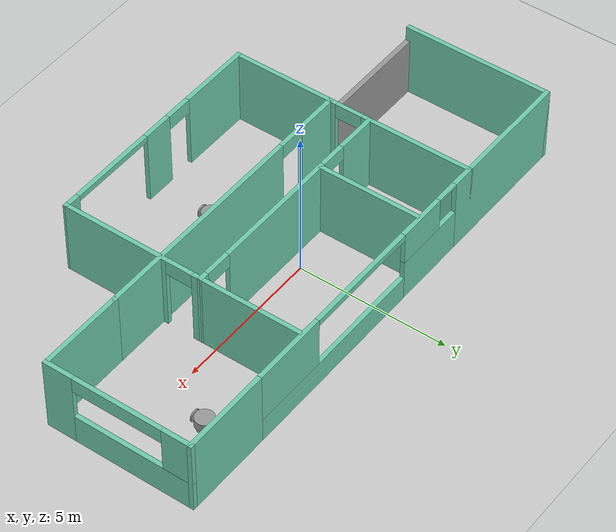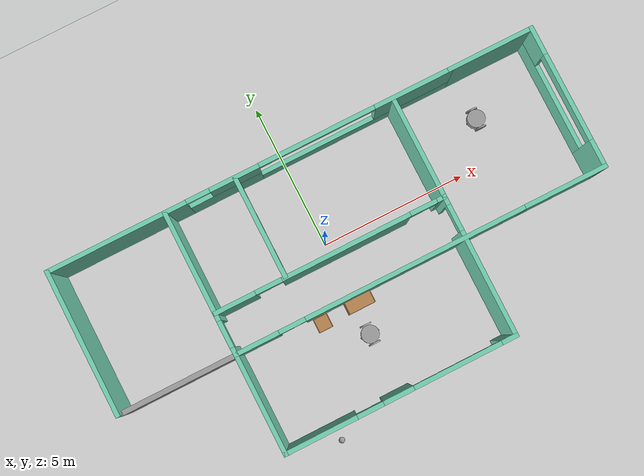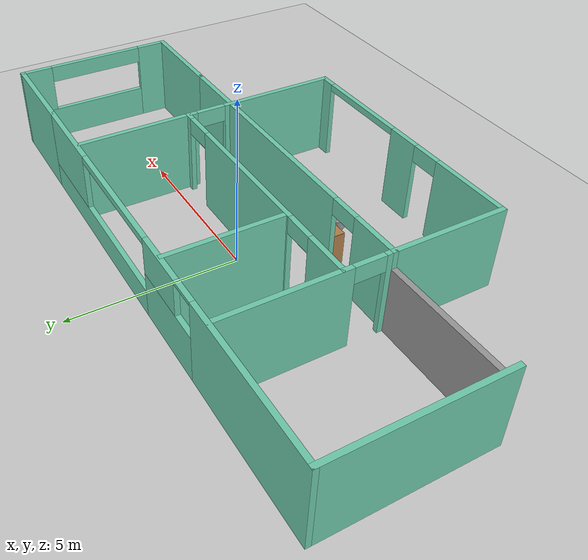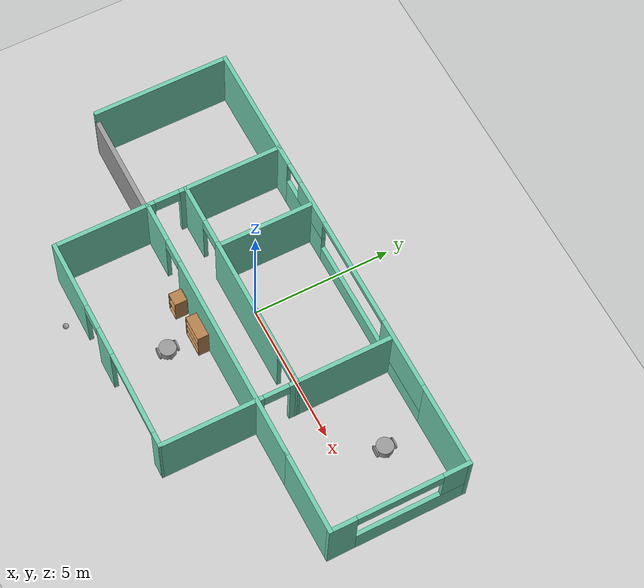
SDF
<sdf version="1.6">
 <world name="default">
  <plugin name="hello" filename="libhello.so"/>
  <light name="sun" type="directional">
   <pose>0 0 10 0 -0 0</pose>
   <diffuse>0.8 0.8 0.8 1</diffuse>
   <specular>0.2 0.2 0.2 1</specular>
   <attenuation>
    <range>1000</range>
    <constant>0.9</constant>
    <linear>0.01</linear>
    <quadratic>0.001</quadratic>
   </attenuation>
   <direction>-0.5 0.1 -0.9</direction>
  </light>
  <model name="ground_plane">
   <static>1</static>
   <link name="link">
    <collision name="collision">
     <geometry><plane><normal>0 0 1</normal><size>100 100</size></plane></geometry>
     <surface>
      <contact><collide_bitmask>65535</collide_bitmask></contact>
      <friction><ode><mu>100</mu><mu2>50</mu2></ode></friction>
     </surface>
    </collision>
    <visual name="visual">
     <cast_shadows>0</cast_shadows>
     <geometry><plane><normal>0 0 1</normal><size>100 100</size></plane></geometry>
     <material>
      <script><uri>file://media/materials/scripts/gazebo.material</uri><name>Gazebo/Grey</name></script>
     </material>
    </visual>
   </link>
  </model>
  <gravity>0 0 -9.8</gravity>
  <magnetic_field>6e-06 2.3e-05 -4.2e-05</magnetic_field>
  <atmosphere type="adiabatic"/>
  <physics name="default_physics" default="0" type="ode">
   <max_step_size>0.001</max_step_size>
   <real_time_factor>1</real_time_factor>
   <real_time_update_rate>1000</real_time_update_rate>
  </physics>
  <scene><ambient>0.4 0.4 0.4 1</ambient><background>0.7 0.7 0.7 1</background><shadows>1</shadows></scene>
  <spherical_coordinates>
   <surface_model>EARTH_WGS84</surface_model>
   <latitude_deg>0</latitude_deg>
   <longitude_deg>0</longitude_deg>
   <elevation>0</elevation>
   <heading_deg>0</heading_deg>
  </spherical_coordinates>
  <model name="mybuilding">
   <pose>0.33074 -1.16282 0 0 -0 0</pose>
   <link name="Door_2">
    <collision name="Door_2_Collision">
     <geometry><box><size>4 0.17 2</size></box></geometry>
     <pose>0 0 1 0 -0 0</pose>
    </collision>
    <visual name="Door_2_Visual">
     <pose>0 0 1 0 -0 0</pose>
     <geometry><box><size>4 0.17 2</size></box></geometry>
     <material>
      <script><uri>file://media/materials/scripts/gazebo.material</uri><name>Gazebo/Grey</name></script>
     </material>
    </visual>
    <pose>-6.34759 -0.757622 0 0 -0 0</pose>
   </link>
   <link name="Wall_0">
    <collision name="Wall_0_Collision">
     <geometry><box><size>5 0.15 2.5</size></box></geometry>
     <pose>0 0 1.25 0 -0 0</pose>
    </collision>
    <visual name="Wall_0_Visual">
     <pose>0 0 1.25 0 -0 0</pose>
     <geometry><box><size>5 0.15 2.5</size></box></geometry>
     <material>
      <script><uri>file://media/materials/scripts/gazebo.material</uri><name>Gazebo/Grey</name></script>
      <ambient>0.435294 0.796078 0.67451 1</ambient>
     </material>
     <meta><layer>0</layer></meta>
    </visual>
    <pose>-8.35 1.67511 0 0 0 -1.5708</pose>
   </link>
   <link name="Wall_10">
    <pose>-0.425 -4.09989 0 0 -0 0</pose>
    <visual name="Wall_10_Visual_0">
     <pose>-2.74578 0 1.25 0 -0 0</pose>
     <geometry><box><size>2.50844 0.15 2.5</size></box></geometry>
     <material>
      <script><uri>file://media/materials/scripts/gazebo.material</uri><name>Gazebo/Grey</name></script>
      <ambient>0.435294 0.796078 0.67451 1</ambient>
     </material>
     <meta><layer>0</layer></meta>
    </visual>
    <collision name="Wall_10_Collision_0">
     <geometry><box><size>2.50844 0.15 2.5</size></box></geometry>
     <pose>-2.74578 0 1.25 0 -0 0</pose>
    </collision>
    <visual name="Wall_10_Visual_1">
     <pose>-0.076945 0 1.25 0 -0 0</pose>
     <geometry><box><size>1.02922 0.15 2.5</size></box></geometry>
     <material>
      <script><uri>file://media/materials/scripts/gazebo.material</uri><name>Gazebo/Grey</name></script>
      <ambient>0.435294 0.796078 0.67451 1</ambient>
     </material>
     <meta><layer>0</layer></meta>
    </visual>
    <collision name="Wall_10_Collision_1">
     <geometry><box><size>1.02922 0.15 2.5</size></box></geometry>
     <pose>-0.076945 0 1.25 0 -0 0</pose>
    </collision>
    <visual name="Wall_10_Visual_2">
     <pose>3.71883 0 1.25 0 -0 0</pose>
     <geometry><box><size>0.562334 0.15 2.5</size></box></geometry>
     <material>
      <script><uri>file://media/materials/scripts/gazebo.material</uri><name>Gazebo/Grey</name></script>
      <ambient>0.435294 0.796078 0.67451 1</ambient>
     </material>
     <meta><layer>0</layer></meta>
    </visual>
    <collision name="Wall_10_Collision_2">
     <geometry><box><size>0.562334 0.15 2.5</size></box></geometry>
     <pose>3.71883 0 1.25 0 -0 0</pose>
    </collision>
    <visual name="Wall_10_Visual_3">
     <pose>-1.04156 0 2.25 0 -0 0</pose>
     <geometry><box><size>0.9 0.15 0.5</size></box></geometry>
     <material>
      <script><uri>file://media/materials/scripts/gazebo.material</uri><name>Gazebo/Grey</name></script>
      <ambient>0.435294 0.796078 0.67451 1</ambient>
     </material>
     <meta><layer>0</layer></meta>
    </visual>
    <collision name="Wall_10_Collision_3">
     <geometry><box><size>0.9 0.15 0.5</size></box></geometry>
     <pose>-1.04156 0 2.25 0 -0 0</pose>
    </collision>
    <visual name="Wall_10_Visual_4">
     <pose>1.93767 0 2.4 0 -0 0</pose>
     <geometry><box><size>3 0.15 0.2</size></box></geometry>
     <material>
      <script><uri>file://media/materials/scripts/gazebo.material</uri><name>Gazebo/Grey</name></script>
      <ambient>0.435294 0.796078 0.67451 1</ambient>
     </material>
     <meta><layer>0</layer></meta>
    </visual>
    <collision name="Wall_10_Collision_4">
     <geometry><box><size>3 0.15 0.2</size></box></geometry>
     <pose>1.93767 0 2.4 0 -0 0</pose>
    </collision>
   </link>
   <link name="Wall_14">
    <pose>-0.411 0.65011 0 0 -0 0</pose>
    <visual name="Wall_14_Visual_0">
     <pose>-3.28166 0 1.25 0 -0 0</pose>
     <geometry><box><size>1.43667 0.15 2.5</size></box></geometry>
     <material>
      <script><uri>file://media/materials/scripts/gazebo.material</uri><name>Gazebo/Grey</name></script>
      <ambient>0.435294 0.796078 0.67451 1</ambient>
     </material>
     <meta><layer>0</layer></meta>
    </visual>
    <collision name="Wall_14_Collision_0">
     <geometry><box><size>1.43667 0.15 2.5</size></box></geometry>
     <pose>-3.28166 0 1.25 0 -0 0</pose>
    </collision>
    <visual name="Wall_14_Visual_1">
     <pose>0.543845 0 1.25 0 -0 0</pose>
     <geometry><box><size>4.41435 0.15 2.5</size></box></geometry>
     <material>
      <script><uri>file://media/materials/scripts/gazebo.material</uri><name>Gazebo/Grey</name></script>
      <ambient>0.435294 0.796078 0.67451 1</ambient>
     </material>
     <meta><layer>0</layer></meta>
    </visual>
    <collision name="Wall_14_Collision_1">
     <geometry><box><size>4.41435 0.15 2.5</size></box></geometry>
     <pose>0.543845 0 1.25 0 -0 0</pose>
    </collision>
    <visual name="Wall_14_Visual_2">
     <pose>3.8342 0 1.25 0 -0 0</pose>
     <geometry><box><size>0.33159 0.15 2.5</size></box></geometry>
     <material>
      <script><uri>file://media/materials/scripts/gazebo.material</uri><name>Gazebo/Grey</name></script>
      <ambient>0.435294 0.796078 0.67451 1</ambient>
     </material>
     <meta><layer>0</layer></meta>
    </visual>
    <collision name="Wall_14_Collision_2">
     <geometry><box><size>0.33159 0.15 2.5</size></box></geometry>
     <pose>3.8342 0 1.25 0 -0 0</pose>
    </collision>
    <visual name="Wall_14_Visual_3">
     <pose>-2.11333 0 2.25 0 -0 0</pose>
     <geometry><box><size>0.9 0.15 0.5</size></box></geometry>
     <material>
      <script><uri>file://media/materials/scripts/gazebo.material</uri><name>Gazebo/Grey</name></script>
      <ambient>0.435294 0.796078 0.67451 1</ambient>
     </material>
     <meta><layer>0</layer></meta>
    </visual>
    <collision name="Wall_14_Collision_3">
     <geometry><box><size>0.9 0.15 0.5</size></box></geometry>
     <pose>-2.11333 0 2.25 0 -0 0</pose>
    </collision>
    <visual name="Wall_14_Visual_4">
     <pose>3.20971 0 2.25 0 -0 0</pose>
     <geometry><box><size>0.917391 0.15 0.5</size></box></geometry>
     <material>
      <script><uri>file://media/materials/scripts/gazebo.material</uri><name>Gazebo/Grey</name></script>
      <ambient>0.435294 0.796078 0.67451 1</ambient>
     </material>
     <meta><layer>0</layer></meta>
    </visual>
    <collision name="Wall_14_Collision_4">
     <geometry><box><size>0.917391 0.15 0.5</size></box></geometry>
     <pose>3.20971 0 2.25 0 -0 0</pose>
    </collision>
   </link>
   <link name="Wall_17">
    <pose>3.507 -1.72489 0 0 0 -1.57374</pose>
    <visual name="Wall_17_Visual_0">
     <pose>-2.27636 0 1.25 0 -0 0</pose>
     <geometry><box><size>0.347298 0.15 2.5</size></box></geometry>
     <material>
      <script><uri>file://media/materials/scripts/gazebo.material</uri><name>Gazebo/Grey</name></script>
      <ambient>0.435294 0.796078 0.67451 1</ambient>
     </material>
     <meta><layer>0</layer></meta>
    </visual>
    <collision name="Wall_17_Collision_0">
     <geometry><box><size>0.347298 0.15 2.5</size></box></geometry>
     <pose>-2.27636 0 1.25 0 -0 0</pose>
    </collision>
    <visual name="Wall_17_Visual_1">
     <pose>0.623649 0 1.25 0 -0 0</pose>
     <geometry><box><size>3.65272 0.15 2.5</size></box></geometry>
     <material>
      <script><uri>file://media/materials/scripts/gazebo.material</uri><name>Gazebo/Grey</name></script>
      <ambient>0.435294 0.796078 0.67451 1</ambient>
     </material>
     <meta><layer>0</layer></meta>
    </visual>
    <collision name="Wall_17_Collision_1">
     <geometry><box><size>3.65272 0.15 2.5</size></box></geometry>
     <pose>0.623649 0 1.25 0 -0 0</pose>
    </collision>
    <visual name="Wall_17_Visual_2">
     <pose>-1.65271 0 2.25 0 -0 0</pose>
     <geometry><box><size>0.9 0.15 0.5</size></box></geometry>
     <material>
      <script><uri>file://media/materials/scripts/gazebo.material</uri><name>Gazebo/Grey</name></script>
      <ambient>0.435294 0.796078 0.67451 1</ambient>
     </material>
     <meta><layer>0</layer></meta>
    </visual>
    <collision name="Wall_17_Collision_2">
     <geometry><box><size>0.9 0.15 0.5</size></box></geometry>
     <pose>-1.65271 0 2.25 0 -0 0</pose>
    </collision>
   </link>
   <link name="Wall_19">
    <collision name="Wall_19_Collision">
     <geometry><box><size>3 0.15 2.5</size></box></geometry>
     <pose>0 0 1.25 0 -0 0</pose>
    </collision>
    <visual name="Wall_19_Visual">
     <pose>0 0 1.25 0 -0 0</pose>
     <geometry><box><size>3 0.15 2.5</size></box></geometry>
     <material>
      <script><uri>file://media/materials/scripts/gazebo.material</uri><name>Gazebo/Grey</name></script>
      <ambient>0.435294 0.796078 0.67451 1</ambient>
     </material>
     <meta><layer>0</layer></meta>
    </visual>
    <pose>6.925 -0.74989 0 0 -0 0</pose>
   </link>
   <link name="Wall_20">
    <pose>8.35 1.67511 0 0 -0 1.5708</pose>
    <visual name="Wall_20_Visual_0">
     <pose>-2.00018 0 1.25 0 -0 0</pose>
     <geometry><box><size>0.999645 0.15 2.5</size></box></geometry>
     <material>
      <script><uri>file://media/materials/scripts/gazebo.material</uri><name>Gazebo/Grey</name></script>
      <ambient>0.435294 0.796078 0.67451 1</ambient>
     </material>
     <meta><layer>0</layer></meta>
    </visual>
    <collision name="Wall_20_Collision_0">
     <geometry><box><size>0.999645 0.15 2.5</size></box></geometry>
     <pose>-2.00018 0 1.25 0 -0 0</pose>
    </collision>
    <visual name="Wall_20_Visual_1">
     <pose>0.499822 0 0.5 0 -0 0</pose>
     <geometry><box><size>4.00035 0.15 1</size></box></geometry>
     <material>
      <script><uri>file://media/materials/scripts/gazebo.material</uri><name>Gazebo/Grey</name></script>
      <ambient>0.435294 0.796078 0.67451 1</ambient>
     </material>
     <meta><layer>0</layer></meta>
    </visual>
    <collision name="Wall_20_Collision_1">
     <geometry><box><size>4.00035 0.15 1</size></box></geometry>
     <pose>0.499822 0 0.5 0 -0 0</pose>
    </collision>
    <visual name="Wall_20_Visual_2">
     <pose>1.99982 0 1.75 0 -0 0</pose>
     <geometry><box><size>1.00036 0.15 1.5</size></box></geometry>
     <material>
      <script><uri>file://media/materials/scripts/gazebo.material</uri><name>Gazebo/Grey</name></script>
      <ambient>0.435294 0.796078 0.67451 1</ambient>
     </material>
     <meta><layer>0</layer></meta>
    </visual>
    <collision name="Wall_20_Collision_2">
     <geometry><box><size>1.00036 0.15 1.5</size></box></geometry>
     <pose>1.99982 0 1.75 0 -0 0</pose>
    </collision>
    <visual name="Wall_20_Visual_3">
     <pose>-0.000355 0 2.25 0 -0 0</pose>
     <geometry><box><size>3 0.15 0.5</size></box></geometry>
     <material>
      <script><uri>file://media/materials/scripts/gazebo.material</uri><name>Gazebo/Grey</name></script>
      <ambient>0.435294 0.796078 0.67451 1</ambient>
     </material>
     <meta><layer>0</layer></meta>
    </visual>
    <collision name="Wall_20_Collision_3">
     <geometry><box><size>3 0.15 0.5</size></box></geometry>
     <pose>-0.000355 0 2.25 0 -0 0</pose>
    </collision>
   </link>
   <link name="Wall_21">
    <collision name="Wall_21_Collision">
     <geometry><box><size>3 0.15 2.5</size></box></geometry>
     <pose>0 0 1.25 0 -0 0</pose>
    </collision>
    <visual name="Wall_21_Visual">
     <pose>0 0 1.25 0 -0 0</pose>
     <geometry><box><size>3 0.15 2.5</size></box></geometry>
     <material>
      <script><uri>file://media/materials/scripts/gazebo.material</uri><name>Gazebo/Grey</name></script>
      <ambient>0.435294 0.796078 0.67451 1</ambient>
     </material>
     <meta><layer>0</layer></meta>
    </visual>
    <pose>6.925 4.10011 0 0 -0 3.14159</pose>
   </link>
   <link name="Wall_23">
    <collision name="Wall_23_Collision">
     <geometry><box><size>3.5 0.15 2.5</size></box></geometry>
     <pose>0 0 1.25 0 -0 0</pose>
    </collision>
    <visual name="Wall_23_Visual">
     <pose>0 0 1.25 0 -0 0</pose>
     <geometry><box><size>3.5 0.15 2.5</size></box></geometry>
     <material>
      <script><uri>file://media/materials/scripts/gazebo.material</uri><name>Gazebo/Grey</name></script>
      <ambient>0.435294 0.796078 0.67451 1</ambient>
     </material>
     <meta><layer>0</layer></meta>
    </visual>
    <pose>3.514 2.32511 0 0 -0 1.5708</pose>
   </link>
   <link name="Wall_27">
    <collision name="Wall_27_Collision">
     <geometry><box><size>3.5 0.15 2.5</size></box></geometry>
     <pose>0 0 1.25 0 -0 0</pose>
    </collision>
    <visual name="Wall_27_Visual">
     <pose>0 0 1.25 0 -0 0</pose>
     <geometry><box><size>3.5 0.15 2.5</size></box></geometry>
     <material>
      <script><uri>file://media/materials/scripts/gazebo.material</uri><name>Gazebo/Grey</name></script>
      <ambient>0.435294 0.796078 0.67451 1</ambient>
     </material>
     <meta><layer>0</layer></meta>
    </visual>
    <pose>-1.94606 2.37639 0 0 -0 1.5708</pose>
   </link>
   <link name="Wall_3">
    <pose>-1.425 4.10011 0 0 -0 0</pose>
    <visual name="Wall_3_Visual_0">
     <pose>-4.59858 0 1.25 0 -0 0</pose>
     <geometry><box><size>4.80283 0.15 2.5</size></box></geometry>
     <material>
      <script><uri>file://media/materials/scripts/gazebo.material</uri><name>Gazebo/Grey</name></script>
      <ambient>0.435294 0.796078 0.67451 1</ambient>
     </material>
     <meta><layer>0</layer></meta>
    </visual>
    <collision name="Wall_3_Collision_0">
     <geometry><box><size>4.80283 0.15 2.5</size></box></geometry>
     <pose>-4.59858 0 1.25 0 -0 0</pose>
    </collision>
    <visual name="Wall_3_Visual_1">
     <pose>-0.948954 0 0.7 0 -0 0</pose>
     <geometry><box><size>2.49643 0.15 1.4</size></box></geometry>
     <material>
      <script><uri>file://media/materials/scripts/gazebo.material</uri><name>Gazebo/Grey</name></script>
      <ambient>0.435294 0.796078 0.67451 1</ambient>
     </material>
     <meta><layer>0</layer></meta>
    </visual>
    <collision name="Wall_3_Collision_1">
     <geometry><box><size>2.49643 0.15 1.4</size></box></geometry>
     <pose>-0.948954 0 0.7 0 -0 0</pose>
    </collision>
    <visual name="Wall_3_Visual_2">
     <pose>3.64963 0 0.4 0 -0 0</pose>
     <geometry><box><size>6.70074 0.15 0.8</size></box></geometry>
     <material>
      <script><uri>file://media/materials/scripts/gazebo.material</uri><name>Gazebo/Grey</name></script>
      <ambient>0.435294 0.796078 0.67451 1</ambient>
     </material>
     <meta><layer>0</layer></meta>
    </visual>
    <collision name="Wall_3_Collision_2">
     <geometry><box><size>6.70074 0.15 0.8</size></box></geometry>
     <pose>3.64963 0 0.4 0 -0 0</pose>
    </collision>
    <visual name="Wall_3_Visual_3">
     <pose>5.64963 0 1.65 0 -0 0</pose>
     <geometry><box><size>2.70074 0.15 1.7</size></box></geometry>
     <material>
      <script><uri>file://media/materials/scripts/gazebo.material</uri><name>Gazebo/Grey</name></script>
      <ambient>0.435294 0.796078 0.67451 1</ambient>
     </material>
     <meta><layer>0</layer></meta>
    </visual>
    <collision name="Wall_3_Collision_3">
     <geometry><box><size>2.70074 0.15 1.7</size></box></geometry>
     <pose>5.64963 0 1.65 0 -0 0</pose>
    </collision>
    <visual name="Wall_3_Visual_4">
     <pose>-0.548954 0 1.95 0 -0 0</pose>
     <geometry><box><size>1.69643 0.15 1.1</size></box></geometry>
     <material>
      <script><uri>file://media/materials/scripts/gazebo.material</uri><name>Gazebo/Grey</name></script>
      <ambient>0.435294 0.796078 0.67451 1</ambient>
     </material>
     <meta><layer>0</layer></meta>
    </visual>
    <collision name="Wall_3_Collision_4">
     <geometry><box><size>1.69643 0.15 1.1</size></box></geometry>
     <pose>-0.548954 0 1.95 0 -0 0</pose>
    </collision>
    <visual name="Wall_3_Visual_5">
     <pose>2.29926 0 2.4 0 -0 0</pose>
     <geometry><box><size>4 0.15 0.2</size></box></geometry>
     <material>
      <script><uri>file://media/materials/scripts/gazebo.material</uri><name>Gazebo/Grey</name></script>
      <ambient>0.435294 0.796078 0.67451 1</ambient>
     </material>
     <meta><layer>0</layer></meta>
    </visual>
    <collision name="Wall_3_Collision_5">
     <geometry><box><size>4 0.15 0.2</size></box></geometry>
     <pose>2.29926 0 2.4 0 -0 0</pose>
    </collision>
    <visual name="Wall_3_Visual_6">
     <pose>-1.79717 0 2.45 0 -0 0</pose>
     <geometry><box><size>0.8 0.15 0.1</size></box></geometry>
     <material>
      <script><uri>file://media/materials/scripts/gazebo.material</uri><name>Gazebo/Grey</name></script>
      <ambient>0.435294 0.796078 0.67451 1</ambient>
     </material>
     <meta><layer>0</layer></meta>
    </visual>
    <collision name="Wall_3_Collision_6">
     <geometry><box><size>0.8 0.15 0.1</size></box></geometry>
     <pose>-1.79717 0 2.45 0 -0 0</pose>
    </collision>
   </link>
   <link name="Wall_5">
    <pose>0.575 -0.74989 0 0 -0 3.14159</pose>
    <visual name="Wall_5_Visual_0">
     <pose>-1.2216 0 1.25 0 -0 0</pose>
     <geometry><box><size>7.55681 0.15 2.5</size></box></geometry>
     <material>
      <script><uri>file://media/materials/scripts/gazebo.material</uri><name>Gazebo/Grey</name></script>
      <ambient>0.435294 0.796078 0.67451 1</ambient>
     </material>
     <meta><layer>0</layer></meta>
    </visual>
    <collision name="Wall_5_Collision_0">
     <geometry><box><size>7.55681 0.15 2.5</size></box></geometry>
     <pose>-1.2216 0 1.25 0 -0 0</pose>
    </collision>
    <visual name="Wall_5_Visual_1">
     <pose>4.2284 0 1.25 0 -0 0</pose>
     <geometry><box><size>1.54319 0.15 2.5</size></box></geometry>
     <material>
      <script><uri>file://media/materials/scripts/gazebo.material</uri><name>Gazebo/Grey</name></script>
      <ambient>0.435294 0.796078 0.67451 1</ambient>
     </material>
     <meta><layer>0</layer></meta>
    </visual>
    <collision name="Wall_5_Collision_1">
     <geometry><box><size>1.54319 0.15 2.5</size></box></geometry>
     <pose>4.2284 0 1.25 0 -0 0</pose>
    </collision>
    <visual name="Wall_5_Visual_2">
     <pose>3.00681 0 2.25 0 -0 0</pose>
     <geometry><box><size>0.9 0.15 0.5</size></box></geometry>
     <material>
      <script><uri>file://media/materials/scripts/gazebo.material</uri><name>Gazebo/Grey</name></script>
      <ambient>0.435294 0.796078 0.67451 1</ambient>
     </material>
     <meta><layer>0</layer></meta>
    </visual>
    <collision name="Wall_5_Collision_2">
     <geometry><box><size>0.9 0.15 0.5</size></box></geometry>
     <pose>3.00681 0 2.25 0 -0 0</pose>
    </collision>
   </link>
   <link name="Wall_6">
    <pose>-4.35 1.67511 0 0 -0 1.5708</pose>
    <visual name="Wall_6_Visual_0">
     <pose>-2.34352 0 1.25 0 -0 0</pose>
     <geometry><box><size>0.312969 0.15 2.5</size></box></geometry>
     <material>
      <script><uri>file://media/materials/scripts/gazebo.material</uri><name>Gazebo/Grey</name></script>
      <ambient>0.435294 0.796078 0.67451 1</ambient>
     </material>
     <meta><layer>0</layer></meta>
    </visual>
    <collision name="Wall_6_Collision_0">
     <geometry><box><size>0.312969 0.15 2.5</size></box></geometry>
     <pose>-2.34352 0 1.25 0 -0 0</pose>
    </collision>
    <visual name="Wall_6_Visual_1">
     <pose>0.606485 0 1.25 0 -0 0</pose>
     <geometry><box><size>3.78703 0.15 2.5</size></box></geometry>
     <material>
      <script><uri>file://media/materials/scripts/gazebo.material</uri><name>Gazebo/Grey</name></script>
      <ambient>0.435294 0.796078 0.67451 1</ambient>
     </material>
     <meta><layer>0</layer></meta>
    </visual>
    <collision name="Wall_6_Collision_1">
     <geometry><box><size>3.78703 0.15 2.5</size></box></geometry>
     <pose>0.606485 0 1.25 0 -0 0</pose>
    </collision>
    <visual name="Wall_6_Visual_2">
     <pose>-1.73703 0 2.25 0 -0 0</pose>
     <geometry><box><size>0.9 0.15 0.5</size></box></geometry>
     <material>
      <script><uri>file://media/materials/scripts/gazebo.material</uri><name>Gazebo/Grey</name></script>
      <ambient>0.435294 0.796078 0.67451 1</ambient>
     </material>
     <meta><layer>0</layer></meta>
    </visual>
    <collision name="Wall_6_Collision_2">
     <geometry><box><size>0.9 0.15 0.5</size></box></geometry>
     <pose>-1.73703 0 2.25 0 -0 0</pose>
    </collision>
   </link>
   <link name="Wall_9">
    <collision name="Wall_9_Collision">
     <geometry><box><size>3.5 0.15 2.5</size></box></geometry>
     <pose>0 0 1.25 0 -0 0</pose>
    </collision>
    <visual name="Wall_9_Visual">
     <pose>0 0 1.25 0 -0 0</pose>
     <geometry><box><size>3.5 0.15 2.5</size></box></geometry>
     <material>
      <script><uri>file://media/materials/scripts/gazebo.material</uri><name>Gazebo/Grey</name></script>
      <ambient>0.435294 0.796078 0.67451 1</ambient>
     </material>
     <meta><layer>0</layer></meta>
    </visual>
    <pose>-4.35 -2.42489 0 0 0 -1.5708</pose>
   </link>
   <static>1</static>
  </model>
  <model name="myRobot">
   <link name="link_1">
    <pose>0.031359 0.265416 0.260009 0 -0 0</pose>
    <inertial>
     <mass>1</mass>
     <inertia><ixx>0.145833</ixx><ixy>0</ixy><ixz>0</ixz><iyy>0.145833</iyy><iyz>0</iyz><izz>0.125</izz></inertia>
    </inertial>
    <visual name="visual">
     <geometry><cylinder><radius>0.3</radius><length>0.3</length></cylinder></geometry>
     <material>
      <lighting>1</lighting>
      <script><uri>file://media/materials/scripts/gazebo.material</uri><name>Gazebo/Grey</name></script>
      <shader type="pixel"><normal_map>__default__</normal_map></shader>
      <ambient>0.3 0.3 0.3 1</ambient>
      <diffuse>0.7 0.7 0.7 1</diffuse>
      <specular>0.01 0.01 0.01 1</specular>
      <emissive>0 0 0 1</emissive>
     </material>
    </visual>
    <collision name="collision">
     <geometry><cylinder><radius>0.3</radius><length>0.3</length></cylinder></geometry>
     <surface>
      <friction>
       <ode><mu>1</mu><mu2>1</mu2><fdir1>0 0 0</fdir1><slip1>0</slip1><slip2>0</slip2></ode>
       <torsional>
        <coefficient>1</coefficient>
        <patch_radius>0</patch_radius>
        <surface_radius>0</surface_radius>
        <use_patch_radius>1</use_patch_radius>
        <ode><slip>0</slip></ode>
       </torsional>
      </friction>
      <bounce><restitution_coefficient>0</restitution_coefficient><threshold>1e+06</threshold></bounce>
      <contact>
       <collide_without_contact>0</collide_without_contact>
       <collide_without_contact_bitmask>1</collide_without_contact_bitmask>
       <collide_bitmask>1</collide_bitmask>
       <ode>
        <soft_cfm>0</soft_cfm>
        <soft_erp>0.2</soft_erp>
        <kp>1e+13</kp>
        <kd>1</kd>
        <max_vel>0.01</max_vel>
        <min_depth>0</min_depth>
       </ode>
       <bullet>
        <split_impulse>1</split_impulse>
        <split_impulse_penetration_threshold>-0.01</split_impulse_penetration_threshold>
        <soft_cfm>0</soft_cfm>
        <soft_erp>0.2</soft_erp>
        <kp>1e+13</kp>
        <kd>1</kd>
       </bullet>
      </contact>
     </surface>
    </collision>
   </link>
   <link name="link_2">
    <pose>0.031359 -0.059703 0.259963 1.57 -0 0</pose>
    <inertial>
     <mass>1</mass>
     <inertia><ixx>0.145833</ixx><ixy>0</ixy><ixz>0</ixz><iyy>0.145833</iyy><iyz>0</iyz><izz>0.125</izz></inertia>
    </inertial>
    <visual name="visual">
     <geometry><cylinder><radius>0.2</radius><length>0.05</length></cylinder></geometry>
     <material>
      <lighting>1</lighting>
      <script><uri>file://media/materials/scripts/gazebo.material</uri><name>Gazebo/Grey</name></script>
      <shader type="pixel"><normal_map>__default__</normal_map></shader>
      <ambient>0.3 0.3 0.3 1</ambient>
      <diffuse>0.7 0.7 0.7 1</diffuse>
      <specular>0.01 0.01 0.01 1</specular>
      <emissive>0 0 0 1</emissive>
     </material>
    </visual>
    <collision name="collision">
     <geometry><cylinder><radius>0.2</radius><length>0.05</length></cylinder></geometry>
     <surface>
      <friction>
       <ode><mu>1</mu><mu2>1</mu2><fdir1>0 0 0</fdir1><slip1>0</slip1><slip2>0</slip2></ode>
       <torsional>
        <coefficient>1</coefficient>
        <patch_radius>0</patch_radius>
        <surface_radius>0</surface_radius>
        <use_patch_radius>1</use_patch_radius>
        <ode><slip>0</slip></ode>
       </torsional>
      </friction>
      <bounce><restitution_coefficient>0</restitution_coefficient><threshold>1e+06</threshold></bounce>
      <contact>
       <collide_without_contact>0</collide_without_contact>
       <collide_without_contact_bitmask>1</collide_without_contact_bitmask>
       <collide_bitmask>1</collide_bitmask>
       <ode>
        <soft_cfm>0</soft_cfm>
        <soft_erp>0.2</soft_erp>
        <kp>1e+13</kp>
        <kd>1</kd>
        <max_vel>0.01</max_vel>
        <min_depth>0</min_depth>
       </ode>
       <bullet>
        <split_impulse>1</split_impulse>
        <split_impulse_penetration_threshold>-0.01</split_impulse_penetration_threshold>
        <soft_cfm>0</soft_cfm>
        <soft_erp>0.2</soft_erp>
        <kp>1e+13</kp>
        <kd>1</kd>
       </bullet>
      </contact>
     </surface>
    </collision>
   </link>
   <link name="link_2_clone_0">
    <pose>0.031359 0.590575 0.260009 1.57 -0 0</pose>
    <inertial>
     <mass>1</mass>
     <inertia><ixx>0.145833</ixx><ixy>0</ixy><ixz>0</ixz><iyy>0.145833</iyy><iyz>0</iyz><izz>0.125</izz></inertia>
    </inertial>
    <visual name="visual">
     <geometry><cylinder><radius>0.2</radius><length>0.05</length></cylinder></geometry>
     <material>
      <lighting>1</lighting>
      <script><uri>file://media/materials/scripts/gazebo.material</uri><name>Gazebo/Grey</name></script>
      <shader type="pixel"><normal_map>__default__</normal_map></shader>
      <ambient>0.3 0.3 0.3 1</ambient>
      <diffuse>0.7 0.7 0.7 1</diffuse>
      <specular>0.01 0.01 0.01 1</specular>
      <emissive>0 0 0 1</emissive>
     </material>
    </visual>
    <collision name="collision">
     <geometry><cylinder><radius>0.2</radius><length>0.05</length></cylinder></geometry>
     <surface>
      <friction>
       <ode><mu>1</mu><mu2>1</mu2><fdir1>0 0 0</fdir1><slip1>0</slip1><slip2>0</slip2></ode>
       <torsional>
        <coefficient>1</coefficient>
        <patch_radius>0</patch_radius>
        <surface_radius>0</surface_radius>
        <use_patch_radius>1</use_patch_radius>
        <ode><slip>0</slip></ode>
       </torsional>
      </friction>
      <bounce><restitution_coefficient>0</restitution_coefficient><threshold>1e+06</threshold></bounce>
      <contact>
       <collide_without_contact>0</collide_without_contact>
       <collide_without_contact_bitmask>1</collide_without_contact_bitmask>
       <collide_bitmask>1</collide_bitmask>
       <ode>
        <soft_cfm>0</soft_cfm>
        <soft_erp>0.2</soft_erp>
        <kp>1e+13</kp>
        <kd>1</kd>
        <max_vel>0.01</max_vel>
        <min_depth>0</min_depth>
       </ode>
       <bullet>
        <split_impulse>1</split_impulse>
        <split_impulse_penetration_threshold>-0.01</split_impulse_penetration_threshold>
        <soft_cfm>0</soft_cfm>
        <soft_erp>0.2</soft_erp>
        <kp>1e+13</kp>
        <kd>1</kd>
       </bullet>
      </contact>
     </surface>
    </collision>
   </link>
   <link name="link_3">
    <pose>0.306359 0.265416 0.110009 0 -0 0</pose>
    <inertial>
     <mass>1</mass>
     <inertia><ixx>0.1</ixx><ixy>0</ixy><ixz>0</ixz><iyy>0.1</iyy><iyz>0</iyz><izz>0.1</izz></inertia>
    </inertial>
    <visual name="visual">
     <geometry><sphere><radius>0.05</radius></sphere></geometry>
     <material>
      <lighting>1</lighting>
      <script><uri>file://media/materials/scripts/gazebo.material</uri><name>Gazebo/Grey</name></script>
      <shader type="pixel"><normal_map>__default__</normal_map></shader>
      <ambient>0.3 0.3 0.3 1</ambient>
      <diffuse>0.7 0.7 0.7 1</diffuse>
      <specular>0.01 0.01 0.01 1</specular>
      <emissive>0 0 0 1</emissive>
     </material>
    </visual>
    <collision name="collision">
     <geometry><sphere><radius>0.05</radius></sphere></geometry>
     <surface>
      <friction>
       <ode><mu>1</mu><mu2>1</mu2><fdir1>0 0 0</fdir1><slip1>0</slip1><slip2>0</slip2></ode>
       <torsional>
        <coefficient>1</coefficient>
        <patch_radius>0</patch_radius>
        <surface_radius>0</surface_radius>
        <use_patch_radius>1</use_patch_radius>
        <ode><slip>0</slip></ode>
       </torsional>
      </friction>
      <bounce><restitution_coefficient>0</restitution_coefficient><threshold>1e+06</threshold></bounce>
      <contact>
       <collide_without_contact>0</collide_without_contact>
       <collide_without_contact_bitmask>1</collide_without_contact_bitmask>
       <collide_bitmask>1</collide_bitmask>
       <ode>
        <soft_cfm>0</soft_cfm>
        <soft_erp>0.2</soft_erp>
        <kp>1e+13</kp>
        <kd>1</kd>
        <max_vel>0.01</max_vel>
        <min_depth>0</min_depth>
       </ode>
       <bullet>
        <split_impulse>1</split_impulse>
        <split_impulse_penetration_threshold>-0.01</split_impulse_penetration_threshold>
        <soft_cfm>0</soft_cfm>
        <soft_erp>0.2</soft_erp>
        <kp>1e+13</kp>
        <kd>1</kd>
       </bullet>
      </contact>
     </surface>
    </collision>
   </link>
   <link name="link_3_clone">
    <pose>-0.243641 0.265416 0.110009 0 -0 0</pose>
    <inertial>
     <mass>1</mass>
     <inertia><ixx>0.1</ixx><ixy>0</ixy><ixz>0</ixz><iyy>0.1</iyy><iyz>0</iyz><izz>0.1</izz></inertia>
    </inertial>
    <visual name="visual">
     <geometry><sphere><radius>0.05</radius></sphere></geometry>
     <material>
      <lighting>1</lighting>
      <script><uri>file://media/materials/scripts/gazebo.material</uri><name>Gazebo/Grey</name></script>
      <shader type="pixel"><normal_map>__default__</normal_map></shader>
      <ambient>0.3 0.3 0.3 1</ambient>
      <diffuse>0.7 0.7 0.7 1</diffuse>
      <specular>0.01 0.01 0.01 1</specular>
      <emissive>0 0 0 1</emissive>
     </material>
    </visual>
    <collision name="collision">
     <geometry><sphere><radius>0.05</radius></sphere></geometry>
     <surface>
      <friction>
       <ode><mu>1</mu><mu2>1</mu2><fdir1>0 0 0</fdir1><slip1>0</slip1><slip2>0</slip2></ode>
       <torsional>
        <coefficient>1</coefficient>
        <patch_radius>0</patch_radius>
        <surface_radius>0</surface_radius>
        <use_patch_radius>1</use_patch_radius>
        <ode><slip>0</slip></ode>
       </torsional>
      </friction>
      <bounce><restitution_coefficient>0</restitution_coefficient><threshold>1e+06</threshold></bounce>
      <contact>
       <collide_without_contact>0</collide_without_contact>
       <collide_without_contact_bitmask>1</collide_without_contact_bitmask>
       <collide_bitmask>1</collide_bitmask>
       <ode>
        <soft_cfm>0</soft_cfm>
        <soft_erp>0.2</soft_erp>
        <kp>1e+13</kp>
        <kd>1</kd>
        <max_vel>0.01</max_vel>
        <min_depth>0</min_depth>
       </ode>
       <bullet>
        <split_impulse>1</split_impulse>
        <split_impulse_penetration_threshold>-0.01</split_impulse_penetration_threshold>
        <soft_cfm>0</soft_cfm>
        <soft_erp>0.2</soft_erp>
        <kp>1e+13</kp>
        <kd>1</kd>
       </bullet>
      </contact>
     </surface>
    </collision>
   </link>
   <joint name="link_1_JOINT_0" type="revolute">
    <parent>link_1</parent>
    <child>link_2</child>
    <axis>
     <xyz>1 0 0</xyz>
     <use_parent_model_frame>0</use_parent_model_frame>
     <limit>
      <lower>-1.79769e+308</lower>
      <upper>1.79769e+308</upper>
      <effort>-1</effort>
      <velocity>-1</velocity>
     </limit>
     <dynamics>
      <spring_reference>0</spring_reference>
      <spring_stiffness>0</spring_stiffness>
      <damping>0</damping>
     </dynamics>
    </axis>
    <physics>
     <ode><limit><cfm>0</cfm><erp>0.2</erp></limit><suspension><cfm>0</cfm><erp>0.2</erp></suspension></ode>
    </physics>
   </joint>
   <joint name="link_1_JOINT_1" type="revolute">
    <parent>link_1</parent>
    <child>link_2_clone_0</child>
    <axis>
     <xyz>1 0 0</xyz>
     <use_parent_model_frame>0</use_parent_model_frame>
     <limit>
      <lower>-1.79769e+308</lower>
      <upper>1.79769e+308</upper>
      <effort>-1</effort>
      <velocity>-1</velocity>
     </limit>
     <dynamics>
      <spring_reference>0</spring_reference>
      <spring_stiffness>0</spring_stiffness>
      <damping>0</damping>
     </dynamics>
    </axis>
    <physics>
     <ode><limit><cfm>0</cfm><erp>0.2</erp></limit><suspension><cfm>0</cfm><erp>0.2</erp></suspension></ode>
    </physics>
   </joint>
   <joint name="link_1_JOINT_2" type="ball">
    <parent>link_1</parent>
    <child>link_3</child>
    <physics>
     <ode><limit><cfm>0</cfm><erp>0.2</erp></limit><suspension><cfm>0</cfm><erp>0.2</erp></suspension></ode>
    </physics>
   </joint>
   <joint name="link_1_JOINT_3" type="ball">
    <parent>link_1</parent>
    <child>link_3_clone</child>
    <physics>
     <ode><limit><cfm>0</cfm><erp>0.2</erp></limit><suspension><cfm>0</cfm><erp>0.2</erp></suspension></ode>
    </physics>
   </joint>
   <static>0</static>
   <pose>-0.055466 -3.49885 -0.059964 3e-05 -9.8e-05 9e-06</pose>
  </model>
  <model name="myRobot_0">
   <link name="link_1">
    <pose>0.031359 0.265416 0.260009 0 -0 0</pose>
    <inertial>
     <mass>1</mass>
     <inertia><ixx>0.145833</ixx><ixy>0</ixy><ixz>0</ixz><iyy>0.145833</iyy><iyz>0</iyz><izz>0.125</izz></inertia>
    </inertial>
    <visual name="visual">
     <geometry><cylinder><radius>0.3</radius><length>0.3</length></cylinder></geometry>
     <material>
      <lighting>1</lighting>
      <script><uri>file://media/materials/scripts/gazebo.material</uri><name>Gazebo/Grey</name></script>
      <shader type="pixel"><normal_map>__default__</normal_map></shader>
      <ambient>0.3 0.3 0.3 1</ambient>
      <diffuse>0.7 0.7 0.7 1</diffuse>
      <specular>0.01 0.01 0.01 1</specular>
      <emissive>0 0 0 1</emissive>
     </material>
    </visual>
    <collision name="collision">
     <geometry><cylinder><radius>0.3</radius><length>0.3</length></cylinder></geometry>
     <surface>
      <friction>
       <ode><mu>1</mu><mu2>1</mu2><fdir1>0 0 0</fdir1><slip1>0</slip1><slip2>0</slip2></ode>
       <torsional>
        <coefficient>1</coefficient>
        <patch_radius>0</patch_radius>
        <surface_radius>0</surface_radius>
        <use_patch_radius>1</use_patch_radius>
        <ode><slip>0</slip></ode>
       </torsional>
      </friction>
      <bounce><restitution_coefficient>0</restitution_coefficient><threshold>1e+06</threshold></bounce>
      <contact>
       <collide_without_contact>0</collide_without_contact>
       <collide_without_contact_bitmask>1</collide_without_contact_bitmask>
       <collide_bitmask>1</collide_bitmask>
       <ode>
        <soft_cfm>0</soft_cfm>
        <soft_erp>0.2</soft_erp>
        <kp>1e+13</kp>
        <kd>1</kd>
        <max_vel>0.01</max_vel>
        <min_depth>0</min_depth>
       </ode>
       <bullet>
        <split_impulse>1</split_impulse>
        <split_impulse_penetration_threshold>-0.01</split_impulse_penetration_threshold>
        <soft_cfm>0</soft_cfm>
        <soft_erp>0.2</soft_erp>
        <kp>1e+13</kp>
        <kd>1</kd>
       </bullet>
      </contact>
     </surface>
    </collision>
   </link>
   <link name="link_2">
    <pose>0.031359 -0.059703 0.259963 1.57 -0 0</pose>
    <inertial>
     <mass>1</mass>
     <inertia><ixx>0.145833</ixx><ixy>0</ixy><ixz>0</ixz><iyy>0.145833</iyy><iyz>0</iyz><izz>0.125</izz></inertia>
    </inertial>
    <visual name="visual">
     <geometry><cylinder><radius>0.2</radius><length>0.05</length></cylinder></geometry>
     <material>
      <lighting>1</lighting>
      <script><uri>file://media/materials/scripts/gazebo.material</uri><name>Gazebo/Grey</name></script>
      <shader type="pixel"><normal_map>__default__</normal_map></shader>
      <ambient>0.3 0.3 0.3 1</ambient>
      <diffuse>0.7 0.7 0.7 1</diffuse>
      <specular>0.01 0.01 0.01 1</specular>
      <emissive>0 0 0 1</emissive>
     </material>
    </visual>
    <collision name="collision">
     <geometry><cylinder><radius>0.2</radius><length>0.05</length></cylinder></geometry>
     <surface>
      <friction>
       <ode><mu>1</mu><mu2>1</mu2><fdir1>0 0 0</fdir1><slip1>0</slip1><slip2>0</slip2></ode>
       <torsional>
        <coefficient>1</coefficient>
        <patch_radius>0</patch_radius>
        <surface_radius>0</surface_radius>
        <use_patch_radius>1</use_patch_radius>
        <ode><slip>0</slip></ode>
       </torsional>
      </friction>
      <bounce><restitution_coefficient>0</restitution_coefficient><threshold>1e+06</threshold></bounce>
      <contact>
       <collide_without_contact>0</collide_without_contact>
       <collide_without_contact_bitmask>1</collide_without_contact_bitmask>
       <collide_bitmask>1</collide_bitmask>
       <ode>
        <soft_cfm>0</soft_cfm>
        <soft_erp>0.2</soft_erp>
        <kp>1e+13</kp>
        <kd>1</kd>
        <max_vel>0.01</max_vel>
        <min_depth>0</min_depth>
       </ode>
       <bullet>
        <split_impulse>1</split_impulse>
        <split_impulse_penetration_threshold>-0.01</split_impulse_penetration_threshold>
        <soft_cfm>0</soft_cfm>
        <soft_erp>0.2</soft_erp>
        <kp>1e+13</kp>
        <kd>1</kd>
       </bullet>
      </contact>
     </surface>
    </collision>
   </link>
   <link name="link_2_clone_0">
    <pose>0.031359 0.590575 0.260009 1.57 -0 0</pose>
    <inertial>
     <mass>1</mass>
     <inertia><ixx>0.145833</ixx><ixy>0</ixy><ixz>0</ixz><iyy>0.145833</iyy><iyz>0</iyz><izz>0.125</izz></inertia>
    </inertial>
    <visual name="visual">
     <geometry><cylinder><radius>0.2</radius><length>0.05</length></cylinder></geometry>
     <material>
      <lighting>1</lighting>
      <script><uri>file://media/materials/scripts/gazebo.material</uri><name>Gazebo/Grey</name></script>
      <shader type="pixel"><normal_map>__default__</normal_map></shader>
      <ambient>0.3 0.3 0.3 1</ambient>
      <diffuse>0.7 0.7 0.7 1</diffuse>
      <specular>0.01 0.01 0.01 1</specular>
      <emissive>0 0 0 1</emissive>
     </material>
    </visual>
    <collision name="collision">
     <geometry><cylinder><radius>0.2</radius><length>0.05</length></cylinder></geometry>
     <surface>
      <friction>
       <ode><mu>1</mu><mu2>1</mu2><fdir1>0 0 0</fdir1><slip1>0</slip1><slip2>0</slip2></ode>
       <torsional>
        <coefficient>1</coefficient>
        <patch_radius>0</patch_radius>
        <surface_radius>0</surface_radius>
        <use_patch_radius>1</use_patch_radius>
        <ode><slip>0</slip></ode>
       </torsional>
      </friction>
      <bounce><restitution_coefficient>0</restitution_coefficient><threshold>1e+06</threshold></bounce>
      <contact>
       <collide_without_contact>0</collide_without_contact>
       <collide_without_contact_bitmask>1</collide_without_contact_bitmask>
       <collide_bitmask>1</collide_bitmask>
       <ode>
        <soft_cfm>0</soft_cfm>
        <soft_erp>0.2</soft_erp>
        <kp>1e+13</kp>
        <kd>1</kd>
        <max_vel>0.01</max_vel>
        <min_depth>0</min_depth>
       </ode>
       <bullet>
        <split_impulse>1</split_impulse>
        <split_impulse_penetration_threshold>-0.01</split_impulse_penetration_threshold>
        <soft_cfm>0</soft_cfm>
        <soft_erp>0.2</soft_erp>
        <kp>1e+13</kp>
        <kd>1</kd>
       </bullet>
      </contact>
     </surface>
    </collision>
   </link>
   <link name="link_3">
    <pose>0.306359 0.265416 0.110009 0 -0 0</pose>
    <inertial>
     <mass>1</mass>
     <inertia><ixx>0.1</ixx><ixy>0</ixy><ixz>0</ixz><iyy>0.1</iyy><iyz>0</iyz><izz>0.1</izz></inertia>
    </inertial>
    <visual name="visual">
     <geometry><sphere><radius>0.05</radius></sphere></geometry>
     <material>
      <lighting>1</lighting>
      <script><uri>file://media/materials/scripts/gazebo.material</uri><name>Gazebo/Grey</name></script>
      <shader type="pixel"><normal_map>__default__</normal_map></shader>
      <ambient>0.3 0.3 0.3 1</ambient>
      <diffuse>0.7 0.7 0.7 1</diffuse>
      <specular>0.01 0.01 0.01 1</specular>
      <emissive>0 0 0 1</emissive>
     </material>
    </visual>
    <collision name="collision">
     <geometry><sphere><radius>0.05</radius></sphere></geometry>
     <surface>
      <friction>
       <ode><mu>1</mu><mu2>1</mu2><fdir1>0 0 0</fdir1><slip1>0</slip1><slip2>0</slip2></ode>
       <torsional>
        <coefficient>1</coefficient>
        <patch_radius>0</patch_radius>
        <surface_radius>0</surface_radius>
        <use_patch_radius>1</use_patch_radius>
        <ode><slip>0</slip></ode>
       </torsional>
      </friction>
      <bounce><restitution_coefficient>0</restitution_coefficient><threshold>1e+06</threshold></bounce>
      <contact>
       <collide_without_contact>0</collide_without_contact>
       <collide_without_contact_bitmask>1</collide_without_contact_bitmask>
       <collide_bitmask>1</collide_bitmask>
       <ode>
        <soft_cfm>0</soft_cfm>
        <soft_erp>0.2</soft_erp>
        <kp>1e+13</kp>
        <kd>1</kd>
        <max_vel>0.01</max_vel>
        <min_depth>0</min_depth>
       </ode>
       <bullet>
        <split_impulse>1</split_impulse>
        <split_impulse_penetration_threshold>-0.01</split_impulse_penetration_threshold>
        <soft_cfm>0</soft_cfm>
        <soft_erp>0.2</soft_erp>
        <kp>1e+13</kp>
        <kd>1</kd>
       </bullet>
      </contact>
     </surface>
    </collision>
   </link>
   <link name="link_3_clone">
    <pose>-0.243641 0.265416 0.110009 0 -0 0</pose>
    <inertial>
     <mass>1</mass>
     <inertia><ixx>0.1</ixx><ixy>0</ixy><ixz>0</ixz><iyy>0.1</iyy><iyz>0</iyz><izz>0.1</izz></inertia>
    </inertial>
    <visual name="visual">
     <geometry><sphere><radius>0.05</radius></sphere></geometry>
     <material>
      <lighting>1</lighting>
      <script><uri>file://media/materials/scripts/gazebo.material</uri><name>Gazebo/Grey</name></script>
      <shader type="pixel"><normal_map>__default__</normal_map></shader>
      <ambient>0.3 0.3 0.3 1</ambient>
      <diffuse>0.7 0.7 0.7 1</diffuse>
      <specular>0.01 0.01 0.01 1</specular>
      <emissive>0 0 0 1</emissive>
     </material>
    </visual>
    <collision name="collision">
     <geometry><sphere><radius>0.05</radius></sphere></geometry>
     <surface>
      <friction>
       <ode><mu>1</mu><mu2>1</mu2><fdir1>0 0 0</fdir1><slip1>0</slip1><slip2>0</slip2></ode>
       <torsional>
        <coefficient>1</coefficient>
        <patch_radius>0</patch_radius>
        <surface_radius>0</surface_radius>
        <use_patch_radius>1</use_patch_radius>
        <ode><slip>0</slip></ode>
       </torsional>
      </friction>
      <bounce><restitution_coefficient>0</restitution_coefficient><threshold>1e+06</threshold></bounce>
      <contact>
       <collide_without_contact>0</collide_without_contact>
       <collide_without_contact_bitmask>1</collide_without_contact_bitmask>
       <collide_bitmask>1</collide_bitmask>
       <ode>
        <soft_cfm>0</soft_cfm>
        <soft_erp>0.2</soft_erp>
        <kp>1e+13</kp>
        <kd>1</kd>
        <max_vel>0.01</max_vel>
        <min_depth>0</min_depth>
       </ode>
       <bullet>
        <split_impulse>1</split_impulse>
        <split_impulse_penetration_threshold>-0.01</split_impulse_penetration_threshold>
        <soft_cfm>0</soft_cfm>
        <soft_erp>0.2</soft_erp>
        <kp>1e+13</kp>
        <kd>1</kd>
       </bullet>
      </contact>
     </surface>
    </collision>
   </link>
   <joint name="link_1_JOINT_0" type="revolute">
    <parent>link_1</parent>
    <child>link_2</child>
    <axis>
     <xyz>1 0 0</xyz>
     <use_parent_model_frame>0</use_parent_model_frame>
     <limit>
      <lower>-1.79769e+308</lower>
      <upper>1.79769e+308</upper>
      <effort>-1</effort>
      <velocity>-1</velocity>
     </limit>
     <dynamics>
      <spring_reference>0</spring_reference>
      <spring_stiffness>0</spring_stiffness>
      <damping>0</damping>
     </dynamics>
    </axis>
    <physics>
     <ode><limit><cfm>0</cfm><erp>0.2</erp></limit><suspension><cfm>0</cfm><erp>0.2</erp></suspension></ode>
    </physics>
   </joint>
   <joint name="link_1_JOINT_1" type="revolute">
    <parent>link_1</parent>
    <child>link_2_clone_0</child>
    <axis>
     <xyz>1 0 0</xyz>
     <use_parent_model_frame>0</use_parent_model_frame>
     <limit>
      <lower>-1.79769e+308</lower>
      <upper>1.79769e+308</upper>
      <effort>-1</effort>
      <velocity>-1</velocity>
     </limit>
     <dynamics>
      <spring_reference>0</spring_reference>
      <spring_stiffness>0</spring_stiffness>
      <damping>0</damping>
     </dynamics>
    </axis>
    <physics>
     <ode><limit><cfm>0</cfm><erp>0.2</erp></limit><suspension><cfm>0</cfm><erp>0.2</erp></suspension></ode>
    </physics>
   </joint>
   <joint name="link_1_JOINT_2" type="ball">
    <parent>link_1</parent>
    <child>link_3</child>
    <physics>
     <ode><limit><cfm>0</cfm><erp>0.2</erp></limit><suspension><cfm>0</cfm><erp>0.2</erp></suspension></ode>
    </physics>
   </joint>
   <joint name="link_1_JOINT_3" type="ball">
    <parent>link_1</parent>
    <child>link_3_clone</child>
    <physics>
     <ode><limit><cfm>0</cfm><erp>0.2</erp></limit><suspension><cfm>0</cfm><erp>0.2</erp></suspension></ode>
    </physics>
   </joint>
   <static>0</static>
   <pose>6.24093 1.1755 -0.05995 0.000215 4e-06 1.6e-05</pose>
  </model>
  <model name="bookshelf">
   <static>1</static>
   <link name="link">
    <inertial><mass>1</mass></inertial>
    <collision name="back">
     <pose>0 0.005 0.6 0 -0 0</pose>
     <geometry><box><size>0.9 0.01 1.2</size></box></geometry>
    </collision>
    <visual name="visual1">
     <pose>0 0.005 0.6 0 -0 0</pose>
     <geometry><box><size>0.9 0.01 1.2</size></box></geometry>
     <material>
      <script><uri>file://media/materials/scripts/gazebo.material</uri><name>Gazebo/Wood</name></script>
     </material>
    </visual>
    <collision name="left_side">
     <pose>0.45 -0.195 0.6 0 -0 0</pose>
     <geometry><box><size>0.02 0.4 1.2</size></box></geometry>
    </collision>
    <visual name="visual2">
     <pose>0.45 -0.195 0.6 0 -0 0</pose>
     <geometry><box><size>0.02 0.4 1.2</size></box></geometry>
     <material>
      <script><uri>file://media/materials/scripts/gazebo.material</uri><name>Gazebo/Wood</name></script>
     </material>
    </visual>
    <collision name="right_side">
     <pose>-0.45 -0.195 0.6 0 -0 0</pose>
     <geometry><box><size>0.02 0.4 1.2</size></box></geometry>
    </collision>
    <visual name="visual3">
     <pose>-0.45 -0.195 0.6 0 -0 0</pose>
     <geometry><box><size>0.02 0.4 1.2</size></box></geometry>
     <material>
      <script><uri>file://media/materials/scripts/gazebo.material</uri><name>Gazebo/Wood</name></script>
     </material>
    </visual>
    <collision name="bottom">
     <pose>0 -0.195 0.03 0 -0 0</pose>
     <geometry><box><size>0.88 0.4 0.06</size></box></geometry>
    </collision>
    <visual name="visual4">
     <pose>0 -0.195 0.03 0 -0 0</pose>
     <geometry><box><size>0.88 0.4 0.06</size></box></geometry>
     <material>
      <script><uri>file://media/materials/scripts/gazebo.material</uri><name>Gazebo/Wood</name></script>
     </material>
    </visual>
    <collision name="top">
     <pose>0 -0.195 1.19 0 -0 0</pose>
     <geometry><box><size>0.88 0.4 0.02</size></box></geometry>
    </collision>
    <visual name="visual5">
     <pose>0 -0.195 1.19 0 -0 0</pose>
     <geometry><box><size>0.88 0.4 0.02</size></box></geometry>
     <material>
      <script><uri>file://media/materials/scripts/gazebo.material</uri><name>Gazebo/Wood</name></script>
     </material>
    </visual>
    <collision name="low_shelf">
     <pose>0 -0.195 0.43 0 -0 0</pose>
     <geometry><box><size>0.88 0.4 0.02</size></box></geometry>
    </collision>
    <visual name="visual6">
     <pose>0 -0.195 0.43 0 -0 0</pose>
     <geometry><box><size>0.88 0.4 0.02</size></box></geometry>
     <material>
      <script><uri>file://media/materials/scripts/gazebo.material</uri><name>Gazebo/Wood</name></script>
     </material>
    </visual>
    <collision name="high_shelf">
     <pose>0 -0.195 0.8 0 -0 0</pose>
     <geometry><box><size>0.88 0.4 0.02</size></box></geometry>
    </collision>
    <visual name="visual7">
     <pose>0 -0.195 0.8 0 -0 0</pose>
     <geometry><box><size>0.88 0.4 0.02</size></box></geometry>
     <material>
      <script><uri>file://media/materials/scripts/gazebo.material</uri><name>Gazebo/Wood</name></script>
     </material>
    </visual>
   </link>
   <pose>0.103204 -1.99247 0 0 -0 0</pose>
  </model>
  <model name="cabinet">
   <static>1</static>
   <link name="cabinet_bottom_plate">
    <inertial>
     <pose>0 0 -1 0 -0 0</pose>
     <inertia><ixx>2.05</ixx><ixy>0</ixy><ixz>0</ixz><iyy>2.05</iyy><iyz>0</iyz><izz>2.05</izz></inertia>
     <mass>25</mass>
    </inertial>
    <collision name="cabinet_bottom_plate_geom">
     <pose>0 0 0.01 0 -0 0</pose>
     <geometry><box><size>0.45 0.45 0.02</size></box></geometry>
    </collision>
    <visual name="cabinet_bottom_plate_geom_visual">
     <pose>0 0 0.01 0 -0 0</pose>
     <geometry><box><size>0.45 0.45 0.02</size></box></geometry>
     <material>
      <script><uri>file://media/materials/scripts/gazebo.material</uri><name>Gazebo/Wood</name></script>
     </material>
    </visual>
    <collision name="cabinet_bottom_plate_geom_cabinet_back_plate">
     <pose>0.235 0 0.51 0 -0 0</pose>
     <geometry><box><size>0.02 0.45 1.02</size></box></geometry>
    </collision>
    <visual name="cabinet_bottom_plate_geom_cabinet_back_plate_visual">
     <pose>0.235 0 0.51 0 -0 0</pose>
     <geometry><box><size>0.02 0.45 1.02</size></box></geometry>
     <material>
      <script><uri>file://media/materials/scripts/gazebo.material</uri><name>Gazebo/Wood</name></script>
     </material>
    </visual>
    <collision name="cabinet_bottom_plate_geom_cabinet_left_plate">
     <pose>0 0.235 0.51 0 -0 0</pose>
     <geometry><box><size>0.45 0.02 1.02</size></box></geometry>
    </collision>
    <visual name="cabinet_bottom_plate_geom_cabinet_left_plate_visual">
     <pose>0 0.235 0.51 0 -0 0</pose>
     <geometry><box><size>0.45 0.02 1.02</size></box></geometry>
     <material>
      <script><uri>file://media/materials/scripts/gazebo.material</uri><name>Gazebo/Wood</name></script>
     </material>
    </visual>
    <collision name="cabinet_bottom_plate_geom_cabinet_middle_plate">
     <pose>0 0 0.51 0 -0 0</pose>
     <geometry><box><size>0.45 0.45 0.02</size></box></geometry>
    </collision>
    <visual name="cabinet_bottom_plate_geom_cabinet_middle_plate_visual">
     <pose>0 0 0.51 0 -0 0</pose>
     <geometry><box><size>0.45 0.45 0.02</size></box></geometry>
     <material>
      <script><uri>file://media/materials/scripts/gazebo.material</uri><name>Gazebo/Wood</name></script>
     </material>
    </visual>
    <collision name="cabinet_bottom_plate_geom_cabinet_right_plate">
     <pose>0 -0.235 0.51 0 -0 0</pose>
     <geometry><box><size>0.45 0.02 1.02</size></box></geometry>
    </collision>
    <visual name="cabinet_bottom_plate_geom_cabinet_right_plate_visual">
     <pose>0 -0.235 0.51 0 -0 0</pose>
     <geometry><box><size>0.45 0.02 1.02</size></box></geometry>
     <material>
      <script><uri>file://media/materials/scripts/gazebo.material</uri><name>Gazebo/Wood</name></script>
     </material>
    </visual>
    <collision name="cabinet_bottom_plate_geom_cabinet_top_plate">
     <pose>0 0 1.01 0 -0 0</pose>
     <geometry><box><size>0.45 0.45 0.02</size></box></geometry>
    </collision>
    <visual name="cabinet_bottom_plate_geom_cabinet_top_plate_visual">
     <pose>0 0 1.01 0 -0 0</pose>
     <geometry><box><size>0.45 0.45 0.02</size></box></geometry>
     <material>
      <script><uri>file://media/materials/scripts/gazebo.material</uri><name>Gazebo/Wood</name></script>
     </material>
    </visual>
   </link>
   <pose>-1.21984 -2.24578 0 0 -0 1.56762</pose>
  </model>
  <model name="my_ball">
   <link name="link_0">
    <inertial>
     <mass>1</mass>
     <inertia><ixx>0.1</ixx><ixy>0</ixy><ixz>0</ixz><iyy>0.1</iyy><iyz>0</iyz><izz>0.1</izz></inertia>
    </inertial>
    <visual name="visual">
     <geometry><sphere><radius>0.1</radius></sphere></geometry>
     <material>
      <lighting>1</lighting>
      <script><uri>file://media/materials/scripts/gazebo.material</uri><name>Gazebo/Grey</name></script>
      <ambient>1 1 1 1</ambient>
      <diffuse>1 1 1 1</diffuse>
      <specular>1 1 1 1</specular>
      <emissive>1 1 1 1</emissive>
      <shader type="vertex"><normal_map>__default__</normal_map></shader>
     </material>
    </visual>
    <collision name="collision">
     <geometry><sphere><radius>0.1</radius></sphere></geometry>
     <surface>
      <friction>
       <ode><mu>1</mu><mu2>1</mu2><fdir1>0 0 0</fdir1><slip1>0</slip1><slip2>0</slip2></ode>
       <torsional>
        <coefficient>1</coefficient>
        <patch_radius>0</patch_radius>
        <surface_radius>0</surface_radius>
        <use_patch_radius>1</use_patch_radius>
        <ode><slip>0</slip></ode>
       </torsional>
      </friction>
      <bounce><restitution_coefficient>0</restitution_coefficient><threshold>1e+06</threshold></bounce>
      <contact>
       <collide_without_contact>0</collide_without_contact>
       <collide_without_contact_bitmask>1</collide_without_contact_bitmask>
       <collide_bitmask>1</collide_bitmask>
       <ode>
        <soft_cfm>0</soft_cfm>
        <soft_erp>0.2</soft_erp>
        <kp>1e+13</kp>
        <kd>1</kd>
        <max_vel>0.01</max_vel>
        <min_depth>0</min_depth>
       </ode>
       <bullet>
        <split_impulse>1</split_impulse>
        <split_impulse_penetration_threshold>-0.01</split_impulse_penetration_threshold>
        <soft_cfm>0</soft_cfm>
        <soft_erp>0.2</soft_erp>
        <kp>1e+13</kp>
        <kd>1</kd>
       </bullet>
      </contact>
     </surface>
    </collision>
   </link>
   <static>0</static>
   <pose>-2.37628 -5.84535 0.1 0 -0 0</pose>
  </model>
 </world>
</sdf>
